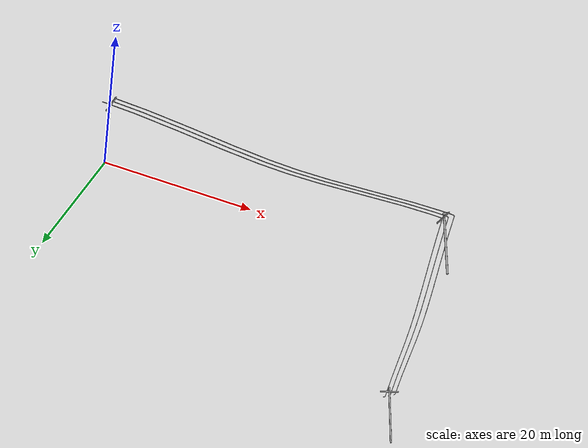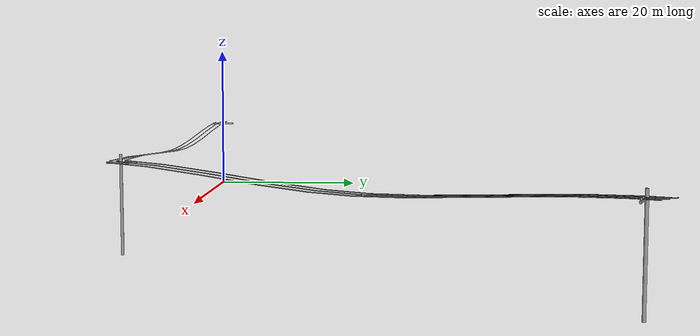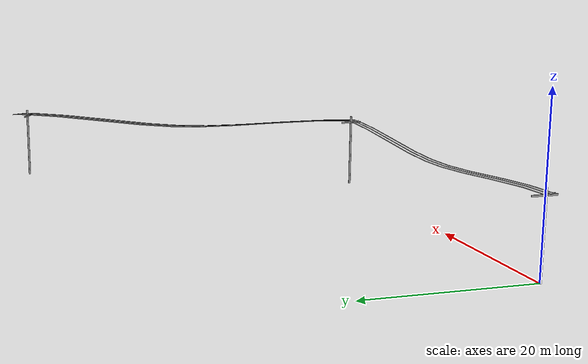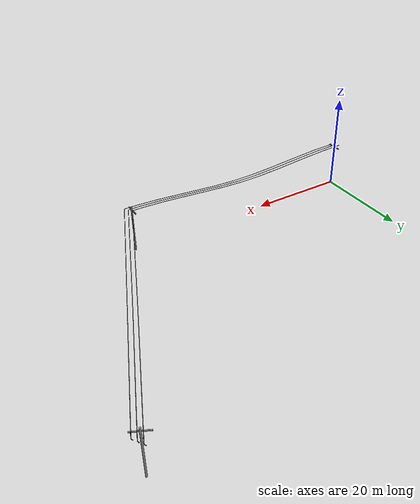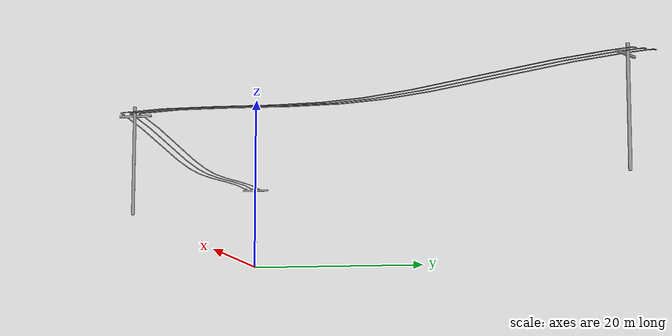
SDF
<sdf version='1.6'>
  <model name='TL'>
    <static>true</static>
    <link name='base_link'>
      <pose frame=''>0 0 0 0 -0 0</pose>
      <inertial>
        <pose frame=''>40.9647 13.6761 6.69126 0 -0 0</pose>
        <mass>3933.3</mass>
        <inertia>
          <ixx>1.49087e+06</ixx>
          <ixy>-1.32744e+06</ixy>
          <ixz>-8733.41</ixz>
          <iyy>2.75396e+06</iyy>
          <iyz>10945.9</iyz>
          <izz>4.18172e+06</izz>
        </inertia>
      </inertial>
      <collision name='base_link_collision'>
        <pose frame=''>0 0 0 0 -0 0</pose>
        <geometry>
          <mesh>
            <scale>1 1 1</scale>
            <uri>model://TL/meshes/base_link.STL</uri>
          </mesh>
        </geometry>
      </collision>
      <collision name='base_link_fixed_joint_lump__barra1_collision_1'>
        <pose frame=''>0 0 0 0 -0 0</pose>
        <geometry>
          <mesh>
            <scale>1 1 1</scale>
            <uri>model://TL/meshes/barra1.STL</uri>
          </mesh>
        </geometry>
      </collision>
      <collision name='base_link_fixed_joint_lump__barra2_collision_2'>
        <pose frame=''>0 0 0 0 -0 0</pose>
        <geometry>
          <mesh>
            <scale>1 1 1</scale>
            <uri>model://TL/meshes/barra2.STL</uri>
          </mesh>
        </geometry>
      </collision>
      <collision name='base_link_fixed_joint_lump__barra3_collision_3'>
        <pose frame=''>0 0 0 0 -0 0</pose>
        <geometry>
          <mesh>
            <scale>1 1 1</scale>
            <uri>model://TL/meshes/barra3.STL</uri>
          </mesh>
        </geometry>
      </collision>
      <collision name='base_link_fixed_joint_lump__cabo1_collision_4'>
        <pose frame=''>0 0 0 0 -0 0</pose>
        <geometry>
          <mesh>
            <scale>1 1 1</scale>
            <uri>model://TL/meshes/cabo1.STL</uri>
          </mesh>
        </geometry>
      </collision>
      <collision name='base_link_fixed_joint_lump__cabo2_collision_5'>
        <pose frame=''>0 0 0 0 -0 0</pose>
        <geometry>
          <mesh>
            <scale>1 1 1</scale>
            <uri>model://TL/meshes/cabo2.STL</uri>
          </mesh>
        </geometry>
      </collision>
      <collision name='base_link_fixed_joint_lump__cabo3_collision_6'>
        <pose frame=''>0 0 0 0 -0 0</pose>
        <geometry>
          <mesh>
            <scale>1 1 1</scale>
            <uri>model://TL/meshes/cabo3.STL</uri>
          </mesh>
        </geometry>
      </collision>
      <collision name='base_link_fixed_joint_lump__cabo4_collision_7'>
        <pose frame=''>0 0 0 0 -0 0</pose>
        <geometry>
          <mesh>
            <scale>1 1 1</scale>
            <uri>model://TL/meshes/cabo4.STL</uri>
          </mesh>
        </geometry>
      </collision>
      <collision name='base_link_fixed_joint_lump__cabo5_collision_8'>
        <pose frame=''>0 0 0 0 -0 0</pose>
        <geometry>
          <mesh>
            <scale>1 1 1</scale>
            <uri>model://TL/meshes/cabo5.STL</uri>
          </mesh>
        </geometry>
      </collision>
      <collision name='base_link_fixed_joint_lump__cabo6_collision_9'>
        <pose frame=''>0 0 0 0 -0 0</pose>
        <geometry>
          <mesh>
            <scale>1 1 1</scale>
            <uri>model://TL/meshes/cabo6.STL</uri>
          </mesh>
        </geometry>
      </collision>
      <collision name='base_link_fixed_joint_lump__poste2_collision_10'>
        <pose frame=''>0 0 0 0 -0 0</pose>
        <geometry>
          <mesh>
            <scale>1 1 1</scale>
            <uri>model://TL/meshes/poste2.STL</uri>
          </mesh>
        </geometry>
      </collision>
      <collision name='base_link_fixed_joint_lump__poste3_collision_11'>
        <pose frame=''>0 0 0 0 -0 0</pose>
        <geometry>
          <mesh>
            <scale>1 1 1</scale>
            <uri>model://TL/meshes/poste3.STL</uri>
          </mesh>
        </geometry>
      </collision>
      <collision name='base_link_fixed_joint_lump__suporte1_collision_12'>
        <pose frame=''>0 0 0 0 -0 0</pose>
        <geometry>
          <mesh>
            <scale>1 1 1</scale>
            <uri>model://TL/meshes/suporte1.STL</uri>
          </mesh>
        </geometry>
      </collision>
      <collision name='base_link_fixed_joint_lump__suporte2_collision_13'>
        <pose frame=''>0 0 0 0 -0 0</pose>
        <geometry>
          <mesh>
            <scale>1 1 1</scale>
            <uri>model://TL/meshes/suporte2.STL</uri>
          </mesh>
        </geometry>
      </collision>
      <collision name='base_link_fixed_joint_lump__suporte3_collision_14'>
        <pose frame=''>0 0 0 0 -0 0</pose>
        <geometry>
          <mesh>
            <scale>1 1 1</scale>
            <uri>model://TL/meshes/suporte3.STL</uri>
          </mesh>
        </geometry>
      </collision>
      <collision name='base_link_fixed_joint_lump__suporte4_collision_15'>
        <pose frame=''>0 0 0 0 -0 0</pose>
        <geometry>
          <mesh>
            <scale>1 1 1</scale>
            <uri>model://TL/meshes/suporte4.STL</uri>
          </mesh>
        </geometry>
      </collision>
      <collision name='base_link_fixed_joint_lump__suporte5_collision_16'>
        <pose frame=''>0 0 0 0 -0 0</pose>
        <geometry>
          <mesh>
            <scale>1 1 1</scale>
            <uri>model://TL/meshes/suporte5.STL</uri>
          </mesh>
        </geometry>
      </collision>
      <collision name='base_link_fixed_joint_lump__suporte6_collision_17'>
        <pose frame=''>0 0 0 0 -0 0</pose>
        <geometry>
          <mesh>
            <scale>1 1 1</scale>
            <uri>model://TL/meshes/suporte6.STL</uri>
          </mesh>
        </geometry>
      </collision>
      <collision name='base_link_fixed_joint_lump__suporte7_collision_18'>
        <pose frame=''>0 0 0 0 -0 0</pose>
        <geometry>
          <mesh>
            <scale>1 1 1</scale>
            <uri>model://TL/meshes/suporte7.STL</uri>
          </mesh>
        </geometry>
      </collision>
      <collision name='base_link_fixed_joint_lump__suporte8_collision_19'>
        <pose frame=''>0 0 0 0 -0 0</pose>
        <geometry>
          <mesh>
            <scale>1 1 1</scale>
            <uri>model://TL/meshes/suporte8.STL</uri>
          </mesh>
        </geometry>
      </collision>
      <collision name='base_link_fixed_joint_lump__suporte9_collision_20'>
        <pose frame=''>0 0 0 0 -0 0</pose>
        <geometry>
          <mesh>
            <scale>1 1 1</scale>
            <uri>model://TL/meshes/suporte9.STL</uri>
          </mesh>
        </geometry>
      </collision>
      <visual name='base_link_visual'>
        <pose frame=''>0 0 0 0 -0 0</pose>
        <geometry>
          <mesh>
            <scale>1 1 1</scale>
            <uri>model://TL/meshes/base_link.STL</uri>
          </mesh>
        </geometry>
        <material>
          <script>
            <uri>file://media/materials/scripts/gazebo.material</uri>
            <name>Gazebo/Grey</name>
          </script>
        </material>
      </visual>
      <visual name='base_link_fixed_joint_lump__barra1_visual_1'>
        <pose frame=''>0 0 0 0 -0 0</pose>
        <geometry>
          <mesh>
            <scale>1 1 1</scale>
            <uri>model://TL/meshes/barra1.STL</uri>
          </mesh>
        </geometry>
        <material>
          <script>
            <uri>file://media/materials/scripts/gazebo.material</uri>
            <name>Gazebo/Grey</name>
          </script>
        </material>
      </visual>
      <visual name='base_link_fixed_joint_lump__barra2_visual_2'>
        <pose frame=''>0 0 0 0 -0 0</pose>
        <geometry>
          <mesh>
            <scale>1 1 1</scale>
            <uri>model://TL/meshes/barra2.STL</uri>
          </mesh>
        </geometry>
        <material>
          <script>
            <uri>file://media/materials/scripts/gazebo.material</uri>
            <name>Gazebo/Grey</name>
          </script>
        </material>
      </visual>
      <visual name='base_link_fixed_joint_lump__barra3_visual_3'>
        <pose frame=''>0 0 0 0 -0 0</pose>
        <geometry>
          <mesh>
            <scale>1 1 1</scale>
            <uri>model://TL/meshes/barra3.STL</uri>
          </mesh>
        </geometry>
        <material>
          <script>
            <uri>file://media/materials/scripts/gazebo.material</uri>
            <name>Gazebo/Grey</name>
          </script>
        </material>
      </visual>
      <visual name='base_link_fixed_joint_lump__cabo1_visual_4'>
        <pose frame=''>0 0 0 0 -0 0</pose>
        <geometry>
          <mesh>
            <scale>1 1 1</scale>
            <uri>model://TL/meshes/cabo1.STL</uri>
          </mesh>
        </geometry>
        <material>
          <script>
            <uri>file://media/materials/scripts/gazebo.material</uri>
            <name>Gazebo/Black</name>
          </script>
        </material>
      </visual>
      <visual name='base_link_fixed_joint_lump__cabo2_visual_5'>
        <pose frame=''>0 0 0 0 -0 0</pose>
        <geometry>
          <mesh>
            <scale>1 1 1</scale>
            <uri>model://TL/meshes/cabo2.STL</uri>
          </mesh>
        </geometry>
        <material>
          <script>
            <uri>file://media/materials/scripts/gazebo.material</uri>
            <name>Gazebo/Black</name>
          </script>
        </material>
      </visual>
      <visual name='base_link_fixed_joint_lump__cabo3_visual_6'>
        <pose frame=''>0 0 0 0 -0 0</pose>
        <geometry>
          <mesh>
            <scale>1 1 1</scale>
            <uri>model://TL/meshes/cabo3.STL</uri>
          </mesh>
        </geometry>
        <material>
          <script>
            <uri>file://media/materials/scripts/gazebo.material</uri>
            <name>Gazebo/Black</name>
          </script>
        </material>
      </visual>
      <visual name='base_link_fixed_joint_lump__cabo4_visual_7'>
        <pose frame=''>0 0 0 0 -0 0</pose>
        <geometry>
          <mesh>
            <scale>1 1 1</scale>
            <uri>model://TL/meshes/cabo4.STL</uri>
          </mesh>
        </geometry>
        <material>
          <script>
            <uri>file://media/materials/scripts/gazebo.material</uri>
            <name>Gazebo/Black</name>
          </script>
        </material>
      </visual>
      <visual name='base_link_fixed_joint_lump__cabo5_visual_8'>
        <pose frame=''>0 0 0 0 -0 0</pose>
        <geometry>
          <mesh>
            <scale>1 1 1</scale>
            <uri>model://TL/meshes/cabo5.STL</uri>
          </mesh>
        </geometry>
        <material>
          <script>
            <uri>file://media/materials/scripts/gazebo.material</uri>
            <name>Gazebo/Black</name>
          </script>
        </material>
      </visual>
      <visual name='base_link_fixed_joint_lump__cabo6_visual_9'>
        <pose frame=''>0 0 0 0 -0 0</pose>
        <geometry>
          <mesh>
            <scale>1 1 1</scale>
            <uri>model://TL/meshes/cabo6.STL</uri>
          </mesh>
        </geometry>
        <material>
          <script>
            <uri>file://media/materials/scripts/gazebo.material</uri>
            <name>Gazebo/Black</name>
          </script>
        </material>
      </visual>
      <visual name='base_link_fixed_joint_lump__poste2_visual_10'>
        <pose frame=''>0 0 0 0 -0 0</pose>
        <geometry>
          <mesh>
            <scale>1 1 1</scale>
            <uri>model://TL/meshes/poste2.STL</uri>
          </mesh>
        </geometry>
        <material>
          <script>
            <uri>file://media/materials/scripts/gazebo.material</uri>
            <name>Gazebo/Grey</name>
          </script>
        </material>
      </visual>
      <visual name='base_link_fixed_joint_lump__poste3_visual_11'>
        <pose frame=''>0 0 0 0 -0 0</pose>
        <geometry>
          <mesh>
            <scale>1 1 1</scale>
            <uri>model://TL/meshes/poste3.STL</uri>
          </mesh>
        </geometry>
        <material>
          <script>
            <uri>file://media/materials/scripts/gazebo.material</uri>
            <name>Gazebo/Grey</name>
          </script>
        </material>
      </visual>
      <visual name='base_link_fixed_joint_lump__suporte1_visual_12'>
        <pose frame=''>0 0 0 0 -0 0</pose>
        <geometry>
          <mesh>
            <scale>1 1 1</scale>
            <uri>model://TL/meshes/suporte1.STL</uri>
          </mesh>
        </geometry>
      </visual>
      <visual name='base_link_fixed_joint_lump__suporte2_visual_13'>
        <pose frame=''>0 0 0 0 -0 0</pose>
        <geometry>
          <mesh>
            <scale>1 1 1</scale>
            <uri>model://TL/meshes/suporte2.STL</uri>
          </mesh>
        </geometry>
      </visual>
      <visual name='base_link_fixed_joint_lump__suporte3_visual_14'>
        <pose frame=''>0 0 0 0 -0 0</pose>
        <geometry>
          <mesh>
            <scale>1 1 1</scale>
            <uri>model://TL/meshes/suporte3.STL</uri>
          </mesh>
        </geometry>
      </visual>
      <visual name='base_link_fixed_joint_lump__suporte4_visual_15'>
        <pose frame=''>0 0 0 0 -0 0</pose>
        <geometry>
          <mesh>
            <scale>1 1 1</scale>
            <uri>model://TL/meshes/suporte4.STL</uri>
          </mesh>
        </geometry>
      </visual>
      <visual name='base_link_fixed_joint_lump__suporte5_visual_16'>
        <pose frame=''>0 0 0 0 -0 0</pose>
        <geometry>
          <mesh>
            <scale>1 1 1</scale>
            <uri>model://TL/meshes/suporte5.STL</uri>
          </mesh>
        </geometry>
      </visual>
      <visual name='base_link_fixed_joint_lump__suporte6_visual_17'>
        <pose frame=''>0 0 0 0 -0 0</pose>
        <geometry>
          <mesh>
            <scale>1 1 1</scale>
            <uri>model://TL/meshes/suporte6.STL</uri>
          </mesh>
        </geometry>
      </visual>
      <visual name='base_link_fixed_joint_lump__suporte7_visual_18'>
        <pose frame=''>0 0 0 0 -0 0</pose>
        <geometry>
          <mesh>
            <scale>1 1 1</scale>
            <uri>model://TL/meshes/suporte7.STL</uri>
          </mesh>
        </geometry>
      </visual>
      <visual name='base_link_fixed_joint_lump__suporte8_visual_19'>
        <pose frame=''>0 0 0 0 -0 0</pose>
        <geometry>
          <mesh>
            <scale>1 1 1</scale>
            <uri>model://TL/meshes/suporte8.STL</uri>
          </mesh>
        </geometry>
      </visual>
      <visual name='base_link_fixed_joint_lump__suporte9_visual_20'>
        <pose frame=''>0 0 0 0 -0 0</pose>
        <geometry>
          <mesh>
            <scale>1 1 1</scale>
            <uri>model://TL/meshes/suporte9.STL</uri>
          </mesh>
        </geometry>
      </visual>
    </link>
  </model>
</sdf>
